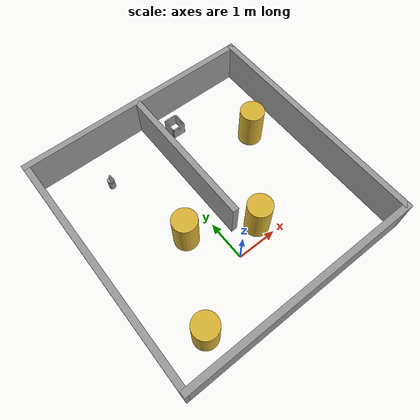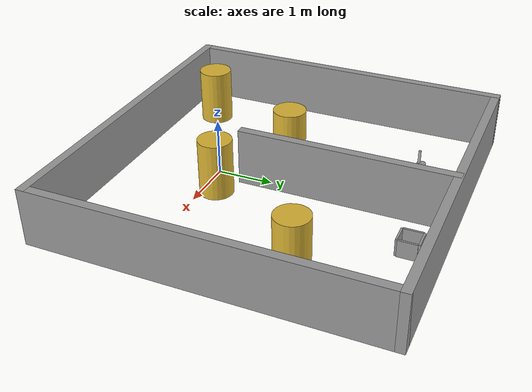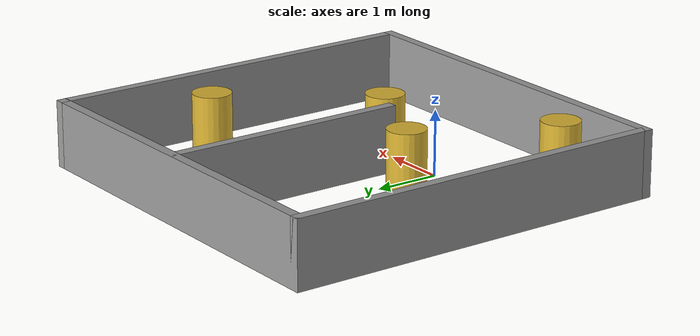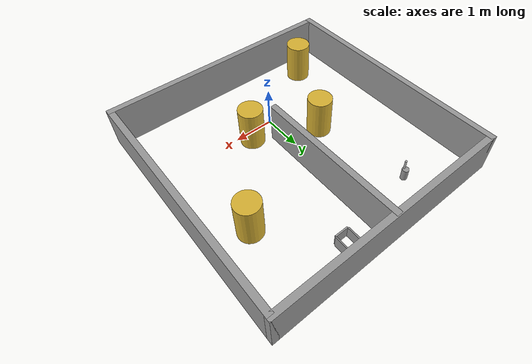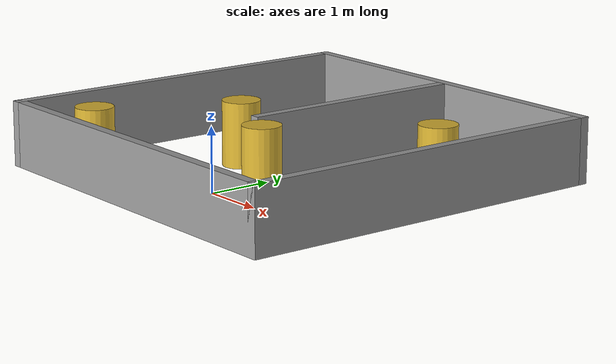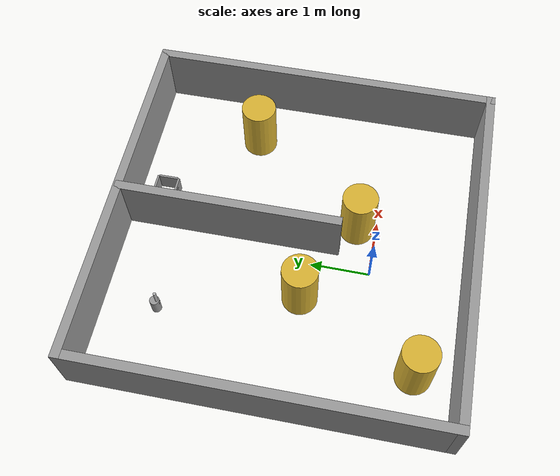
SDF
<sdf version="1.6">
 <world name="default">
  <light name="sun" type="directional">
   <pose>0 0 10 0 -0 0</pose>
   <diffuse>0.8 0.8 0.8 1</diffuse>
   <specular>0.2 0.2 0.2 1</specular>
   <attenuation>
    <range>1000</range>
    <constant>0.9</constant>
    <linear>0.01</linear>
    <quadratic>0.001</quadratic>
   </attenuation>
   <direction>-0.5 0.5 -1</direction>
  </light>
  <gravity>0 0 -9.8</gravity>
  <magnetic_field>6e-06 2.3e-05 -4.2e-05</magnetic_field>
  <atmosphere type="adiabatic"/>
  <physics name="default_physics" default="0" type="ode">
   <max_step_size>0.01</max_step_size>
   <real_time_factor>1</real_time_factor>
   <real_time_update_rate>100</real_time_update_rate>
   <ode>
    <solver>
     <type>quick</type>
     <iters>100</iters>
     <precon_iters>0</precon_iters>
     <sor>1</sor>
     <use_dynamic_moi_rescaling>0</use_dynamic_moi_rescaling>
    </solver>
    <constraints>
     <cfm>0</cfm>
     <erp>0.5</erp>
     <contact_max_correcting_vel>1000</contact_max_correcting_vel>
     <contact_surface_layer>0</contact_surface_layer>
    </constraints>
   </ode>
  </physics>
  <scene><ambient>0.4 0.4 0.4 1</ambient><background>0.7 0.7 0.7 1</background><shadows>0</shadows></scene>
  <spherical_coordinates>
   <surface_model>EARTH_WGS84</surface_model>
   <latitude_deg>0</latitude_deg>
   <longitude_deg>0</longitude_deg>
   <elevation>0</elevation>
   <heading_deg>0</heading_deg>
  </spherical_coordinates>
  <light name="user_point_light_0" type="point">
   <pose>3.54976 1.43038 1 0 -0 0</pose>
   <diffuse>0.5 0.5 0.5 1</diffuse>
   <specular>0.1 0.1 0.1 1</specular>
   <attenuation>
    <range>20</range>
    <constant>0.5</constant>
    <linear>0.01</linear>
    <quadratic>0.001</quadratic>
   </attenuation>
   <cast_shadows>0</cast_shadows>
   <direction>0 0 -1</direction>
  </light>
  <light name="user_point_light_0_clone" type="point">
   <pose>-8.02842 6.22549 7.18798 0 -0 0</pose>
   <diffuse>0.5 0.5 0.5 1</diffuse>
   <specular>0.1 0.1 0.1 1</specular>
   <direction>0 0 -1</direction>
   <attenuation>
    <range>20</range>
    <constant>0.5</constant>
    <linear>0.01</linear>
    <quadratic>0.001</quadratic>
   </attenuation>
   <cast_shadows>0</cast_shadows>
  </light>
  <audio><device>default</device></audio>
  <model name="turtlebot3_rooms">
   <link name="link_0">
    <pose>0.683315 4.23233 0 0 -0 0</pose>
    <inertial>
     <mass>0.00350583</mass>
     <inertia>
      <ixx>2.82745e-05</ixx>
      <ixy>0</ixy>
      <ixz>0</ixz>
      <iyy>5.98732e-05</iyy>
      <iyz>0</iyz>
      <izz>3.22857e-05</izz>
     </inertia>
    </inertial>
    <visual name="visual">
     <geometry><box><size>0.330665 0.034321 0.309211</size></box></geometry>
     <material>
      <lighting>1</lighting>
      <script><uri>file://media/materials/scripts/gazebo.material</uri><name>Gazebo/Grey</name></script>
      <ambient>0.3 0.3 0.3 1</ambient>
      <diffuse>0.7 0.7 0.7 1</diffuse>
      <specular>0.01 0.01 0.01 1</specular>
      <emissive>0 0 0 1</emissive>
     </material>
    </visual>
    <collision name="collision">
     <geometry><box><size>0.330665 0.034321 0.309211</size></box></geometry>
     <surface>
      <friction>
       <ode><mu>1</mu><mu2>1</mu2><fdir1>0 0 0</fdir1><slip1>0</slip1><slip2>0</slip2></ode>
       <torsional>
        <coefficient>1</coefficient>
        <patch_radius>0</patch_radius>
        <surface_radius>0</surface_radius>
        <use_patch_radius>1</use_patch_radius>
        <ode><slip>0</slip></ode>
       </torsional>
      </friction>
      <bounce><restitution_coefficient>0</restitution_coefficient><threshold>1e+06</threshold></bounce>
      <contact>
       <collide_without_contact>0</collide_without_contact>
       <collide_without_contact_bitmask>1</collide_without_contact_bitmask>
       <collide_bitmask>1</collide_bitmask>
       <ode>
        <soft_cfm>0</soft_cfm>
        <soft_erp>0.2</soft_erp>
        <kp>1e+13</kp>
        <kd>1</kd>
        <max_vel>0.01</max_vel>
        <min_depth>0</min_depth>
       </ode>
       <bullet>
        <split_impulse>1</split_impulse>
        <split_impulse_penetration_threshold>-0.01</split_impulse_penetration_threshold>
        <soft_cfm>0</soft_cfm>
        <soft_erp>0.2</soft_erp>
        <kp>1e+13</kp>
        <kd>1</kd>
       </bullet>
      </contact>
     </surface>
    </collision>
   </link>
   <link name="link_0_clone">
    <pose>0.682862 4.5976 0 0 -0 0</pose>
    <inertial>
     <mass>0.00350583</mass>
     <inertia>
      <ixx>2.82745e-05</ixx>
      <ixy>0</ixy>
      <ixz>0</ixz>
      <iyy>5.98732e-05</iyy>
      <iyz>0</iyz>
      <izz>3.22857e-05</izz>
     </inertia>
    </inertial>
    <visual name="visual">
     <geometry><box><size>0.330665 0.034321 0.309211</size></box></geometry>
     <material>
      <lighting>1</lighting>
      <script><uri>file://media/materials/scripts/gazebo.material</uri><name>Gazebo/Grey</name></script>
      <ambient>0.3 0.3 0.3 1</ambient>
      <diffuse>0.7 0.7 0.7 1</diffuse>
      <specular>0.01 0.01 0.01 1</specular>
      <emissive>0 0 0 1</emissive>
      <shader type="pixel"/>
     </material>
    </visual>
    <collision name="collision">
     <geometry><box><size>0.330665 0.034321 0.309211</size></box></geometry>
     <surface>
      <friction>
       <ode><mu>1</mu><mu2>1</mu2><fdir1>0 0 0</fdir1><slip1>0</slip1><slip2>0</slip2></ode>
       <torsional>
        <coefficient>1</coefficient>
        <patch_radius>0</patch_radius>
        <surface_radius>0</surface_radius>
        <use_patch_radius>1</use_patch_radius>
        <ode><slip>0</slip></ode>
       </torsional>
      </friction>
      <bounce><restitution_coefficient>0</restitution_coefficient><threshold>1e+06</threshold></bounce>
      <contact>
       <collide_without_contact>0</collide_without_contact>
       <collide_without_contact_bitmask>1</collide_without_contact_bitmask>
       <collide_bitmask>1</collide_bitmask>
       <ode>
        <soft_cfm>0</soft_cfm>
        <soft_erp>0.2</soft_erp>
        <kp>1e+13</kp>
        <kd>1</kd>
        <max_vel>0.01</max_vel>
        <min_depth>0</min_depth>
       </ode>
       <bullet>
        <split_impulse>1</split_impulse>
        <split_impulse_penetration_threshold>-0.01</split_impulse_penetration_threshold>
        <soft_cfm>0</soft_cfm>
        <soft_erp>0.2</soft_erp>
        <kp>1e+13</kp>
        <kd>1</kd>
       </bullet>
      </contact>
     </surface>
    </collision>
   </link>
   <link name="link_0_clone_0">
    <pose>0.84811 4.41524 0 0 -0 1.5708</pose>
    <inertial>
     <mass>0.00350583</mass>
     <inertia>
      <ixx>2.82745e-05</ixx>
      <ixy>0</ixy>
      <ixz>0</ixz>
      <iyy>5.98732e-05</iyy>
      <iyz>0</iyz>
      <izz>3.22857e-05</izz>
     </inertia>
    </inertial>
    <visual name="visual">
     <geometry><box><size>0.330665 0.034321 0.309211</size></box></geometry>
     <material>
      <lighting>1</lighting>
      <script><uri>file://media/materials/scripts/gazebo.material</uri><name>Gazebo/Grey</name></script>
      <ambient>0.3 0.3 0.3 1</ambient>
      <diffuse>0.7 0.7 0.7 1</diffuse>
      <specular>0.01 0.01 0.01 1</specular>
      <emissive>0 0 0 1</emissive>
      <shader type="pixel"/>
     </material>
    </visual>
    <collision name="collision">
     <geometry><box><size>0.330665 0.034321 0.309211</size></box></geometry>
     <surface>
      <friction>
       <ode><mu>1</mu><mu2>1</mu2><fdir1>0 0 0</fdir1><slip1>0</slip1><slip2>0</slip2></ode>
       <torsional>
        <coefficient>1</coefficient>
        <patch_radius>0</patch_radius>
        <surface_radius>0</surface_radius>
        <use_patch_radius>1</use_patch_radius>
        <ode><slip>0</slip></ode>
       </torsional>
      </friction>
      <bounce><restitution_coefficient>0</restitution_coefficient><threshold>1e+06</threshold></bounce>
      <contact>
       <collide_without_contact>0</collide_without_contact>
       <collide_without_contact_bitmask>1</collide_without_contact_bitmask>
       <collide_bitmask>1</collide_bitmask>
       <ode>
        <soft_cfm>0</soft_cfm>
        <soft_erp>0.2</soft_erp>
        <kp>1e+13</kp>
        <kd>1</kd>
        <max_vel>0.01</max_vel>
        <min_depth>0</min_depth>
       </ode>
       <bullet>
        <split_impulse>1</split_impulse>
        <split_impulse_penetration_threshold>-0.01</split_impulse_penetration_threshold>
        <soft_cfm>0</soft_cfm>
        <soft_erp>0.2</soft_erp>
        <kp>1e+13</kp>
        <kd>1</kd>
       </bullet>
      </contact>
     </surface>
    </collision>
   </link>
   <link name="link_0_clone_1">
    <pose>0.513944 4.41515 0 0 0 -1.5708</pose>
    <inertial>
     <mass>0.00350583</mass>
     <inertia>
      <ixx>2.82745e-05</ixx>
      <ixy>0</ixy>
      <ixz>0</ixz>
      <iyy>5.98732e-05</iyy>
      <iyz>0</iyz>
      <izz>3.22857e-05</izz>
     </inertia>
    </inertial>
    <visual name="visual">
     <geometry><box><size>0.330665 0.034321 0.309211</size></box></geometry>
     <material>
      <lighting>1</lighting>
      <script><uri>file://media/materials/scripts/gazebo.material</uri><name>Gazebo/Grey</name></script>
      <ambient>0.3 0.3 0.3 1</ambient>
      <diffuse>0.7 0.7 0.7 1</diffuse>
      <specular>0.01 0.01 0.01 1</specular>
      <emissive>0 0 0 1</emissive>
      <shader type="pixel"/>
     </material>
    </visual>
    <collision name="collision">
     <geometry><box><size>0.330665 0.034321 0.309211</size></box></geometry>
     <surface>
      <friction>
       <ode><mu>1</mu><mu2>1</mu2><fdir1>0 0 0</fdir1><slip1>0</slip1><slip2>0</slip2></ode>
       <torsional>
        <coefficient>1</coefficient>
        <patch_radius>0</patch_radius>
        <surface_radius>0</surface_radius>
        <use_patch_radius>1</use_patch_radius>
        <ode><slip>0</slip></ode>
       </torsional>
      </friction>
      <bounce><restitution_coefficient>0</restitution_coefficient><threshold>1e+06</threshold></bounce>
      <contact>
       <collide_without_contact>0</collide_without_contact>
       <collide_without_contact_bitmask>1</collide_without_contact_bitmask>
       <collide_bitmask>1</collide_bitmask>
       <ode>
        <soft_cfm>0</soft_cfm>
        <soft_erp>0.2</soft_erp>
        <kp>1e+13</kp>
        <kd>1</kd>
        <max_vel>0.01</max_vel>
        <min_depth>0</min_depth>
       </ode>
       <bullet>
        <split_impulse>1</split_impulse>
        <split_impulse_penetration_threshold>-0.01</split_impulse_penetration_threshold>
        <soft_cfm>0</soft_cfm>
        <soft_erp>0.2</soft_erp>
        <kp>1e+13</kp>
        <kd>1</kd>
       </bullet>
      </contact>
     </surface>
    </collision>
   </link>
   <link name="link_5">
    <pose>-1.50431 3.99994 0 0 -0 0</pose>
    <inertial>
     <mass>0.00123934</mass>
     <inertia>
      <ixx>2.13894e-06</ixx>
      <ixy>0</ixy>
      <ixz>0</ixz>
      <iyy>2.13894e-06</iyy>
      <iyz>0</iyz>
      <izz>3.73085e-06</izz>
     </inertia>
    </inertial>
    <visual name="visual">
     <geometry><cylinder><radius>0.08</radius><length>0.3</length></cylinder></geometry>
     <material>
      <lighting>1</lighting>
      <script><uri>file://media/materials/scripts/gazebo.material</uri><name>Gazebo/Grey</name></script>
      <ambient>0.3 0.3 0.3 1</ambient>
      <diffuse>0.7 0.7 0.7 1</diffuse>
      <specular>0.01 0.01 0.01 1</specular>
      <emissive>0 0 0 1</emissive>
     </material>
    </visual>
    <collision name="collision">
     <geometry><cylinder><radius>0.08</radius><length>0.3</length></cylinder></geometry>
     <surface>
      <friction>
       <ode><mu>1</mu><mu2>1</mu2><fdir1>0 0 0</fdir1><slip1>0</slip1><slip2>0</slip2></ode>
       <torsional>
        <coefficient>1</coefficient>
        <patch_radius>0</patch_radius>
        <surface_radius>0</surface_radius>
        <use_patch_radius>1</use_patch_radius>
        <ode><slip>0</slip></ode>
       </torsional>
      </friction>
      <bounce><restitution_coefficient>0</restitution_coefficient><threshold>1e+06</threshold></bounce>
      <contact>
       <collide_without_contact>0</collide_without_contact>
       <collide_without_contact_bitmask>1</collide_without_contact_bitmask>
       <collide_bitmask>1</collide_bitmask>
       <ode>
        <soft_cfm>0</soft_cfm>
        <soft_erp>0.2</soft_erp>
        <kp>1e+13</kp>
        <kd>1</kd>
        <max_vel>0.01</max_vel>
        <min_depth>0</min_depth>
       </ode>
       <bullet>
        <split_impulse>1</split_impulse>
        <split_impulse_penetration_threshold>-0.01</split_impulse_penetration_threshold>
        <soft_cfm>0</soft_cfm>
        <soft_erp>0.2</soft_erp>
        <kp>1e+13</kp>
        <kd>1</kd>
       </bullet>
      </contact>
     </surface>
    </collision>
   </link>
   <link name="link_1">
    <pose>-0.960899 1.71925 0.5 0 -0 0</pose>
    <inertial>
     <mass>0.341779</mass>
     <inertia>
      <ixx>0.0357823</ixx>
      <ixy>0</ixy>
      <ixz>0</ixz>
      <iyy>0.0357823</iyy>
      <iyz>0</iyz>
      <izz>0.0146016</izz>
     </inertia>
    </inertial>
    <visual name="visual">
     <geometry><cylinder><radius>0.292309</radius><length>1</length></cylinder></geometry>
     <material>
      <lighting>1</lighting>
      <script><uri>file://media/materials/scripts/gazebo.material</uri><name>Gazebo/Gold</name></script>
      <ambient>0.3 0.3 0.3 1</ambient>
      <diffuse>0.7 0.7 0.7 1</diffuse>
      <specular>0.01 0.01 0.01 1</specular>
      <emissive>0 0 0 1</emissive>
     </material>
    </visual>
    <collision name="collision">
     <geometry><cylinder><radius>0.292309</radius><length>1</length></cylinder></geometry>
     <surface>
      <friction>
       <ode><mu>1</mu><mu2>1</mu2><fdir1>0 0 0</fdir1><slip1>0</slip1><slip2>0</slip2></ode>
       <torsional>
        <coefficient>1</coefficient>
        <patch_radius>0</patch_radius>
        <surface_radius>0</surface_radius>
        <use_patch_radius>1</use_patch_radius>
        <ode><slip>0</slip></ode>
       </torsional>
      </friction>
      <bounce><restitution_coefficient>0</restitution_coefficient><threshold>1e+06</threshold></bounce>
      <contact>
       <collide_without_contact>0</collide_without_contact>
       <collide_without_contact_bitmask>1</collide_without_contact_bitmask>
       <collide_bitmask>1</collide_bitmask>
       <ode>
        <soft_cfm>0</soft_cfm>
        <soft_erp>0.2</soft_erp>
        <kp>1e+13</kp>
        <kd>1</kd>
        <max_vel>0.01</max_vel>
        <min_depth>0</min_depth>
       </ode>
       <bullet>
        <split_impulse>1</split_impulse>
        <split_impulse_penetration_threshold>-0.01</split_impulse_penetration_threshold>
        <soft_cfm>0</soft_cfm>
        <soft_erp>0.2</soft_erp>
        <kp>1e+13</kp>
        <kd>1</kd>
       </bullet>
      </contact>
     </surface>
    </collision>
   </link>
   <link name="link_1_clone">
    <pose>-1.9402 -0.24147 0.5 0 -0 0</pose>
    <inertial>
     <mass>0.341779</mass>
     <inertia>
      <ixx>0.0357823</ixx>
      <ixy>0</ixy>
      <ixz>0</ixz>
      <iyy>0.0357823</iyy>
      <iyz>0</iyz>
      <izz>0.0146016</izz>
     </inertia>
    </inertial>
    <visual name="visual">
     <geometry><cylinder><radius>0.292309</radius><length>1</length></cylinder></geometry>
     <material>
      <lighting>1</lighting>
      <script><uri>file://media/materials/scripts/gazebo.material</uri><name>Gazebo/Gold</name></script>
      <ambient>0.3 0.3 0.3 1</ambient>
      <diffuse>0.7 0.7 0.7 1</diffuse>
      <specular>0.01 0.01 0.01 1</specular>
      <emissive>0 0 0 1</emissive>
      <shader type="pixel"/>
     </material>
    </visual>
    <collision name="collision">
     <geometry><cylinder><radius>0.292309</radius><length>1</length></cylinder></geometry>
     <surface>
      <friction>
       <ode><mu>1</mu><mu2>1</mu2><fdir1>0 0 0</fdir1><slip1>0</slip1><slip2>0</slip2></ode>
       <torsional>
        <coefficient>1</coefficient>
        <patch_radius>0</patch_radius>
        <surface_radius>0</surface_radius>
        <use_patch_radius>1</use_patch_radius>
        <ode><slip>0</slip></ode>
       </torsional>
      </friction>
      <bounce><restitution_coefficient>0</restitution_coefficient><threshold>1e+06</threshold></bounce>
      <contact>
       <collide_without_contact>0</collide_without_contact>
       <collide_without_contact_bitmask>1</collide_without_contact_bitmask>
       <collide_bitmask>1</collide_bitmask>
       <ode>
        <soft_cfm>0</soft_cfm>
        <soft_erp>0.2</soft_erp>
        <kp>1e+13</kp>
        <kd>1</kd>
        <max_vel>0.01</max_vel>
        <min_depth>0</min_depth>
       </ode>
       <bullet>
        <split_impulse>1</split_impulse>
        <split_impulse_penetration_threshold>-0.01</split_impulse_penetration_threshold>
        <soft_cfm>0</soft_cfm>
        <soft_erp>0.2</soft_erp>
        <kp>1e+13</kp>
        <kd>1</kd>
       </bullet>
      </contact>
     </surface>
    </collision>
   </link>
   <link name="link_1_clone_0">
    <pose>0.49715 0.99994 0.5 0 -0 0</pose>
    <inertial>
     <mass>0.341779</mass>
     <inertia>
      <ixx>0.0357823</ixx>
      <ixy>0</ixy>
      <ixz>0</ixz>
      <iyy>0.0357823</iyy>
      <iyz>0</iyz>
      <izz>0.0146016</izz>
     </inertia>
    </inertial>
    <visual name="visual">
     <geometry><cylinder><radius>0.292309</radius><length>1</length></cylinder></geometry>
     <material>
      <lighting>1</lighting>
      <script><uri>file://media/materials/scripts/gazebo.material</uri><name>Gazebo/Gold</name></script>
      <ambient>0.3 0.3 0.3 1</ambient>
      <diffuse>0.7 0.7 0.7 1</diffuse>
      <specular>0.01 0.01 0.01 1</specular>
      <emissive>0 0 0 1</emissive>
      <shader type="pixel"/>
     </material>
    </visual>
    <collision name="collision">
     <geometry><cylinder><radius>0.292309</radius><length>1</length></cylinder></geometry>
     <surface>
      <friction>
       <ode><mu>1</mu><mu2>1</mu2><fdir1>0 0 0</fdir1><slip1>0</slip1><slip2>0</slip2></ode>
       <torsional>
        <coefficient>1</coefficient>
        <patch_radius>0</patch_radius>
        <surface_radius>0</surface_radius>
        <use_patch_radius>1</use_patch_radius>
        <ode><slip>0</slip></ode>
       </torsional>
      </friction>
      <bounce><restitution_coefficient>0</restitution_coefficient><threshold>1e+06</threshold></bounce>
      <contact>
       <collide_without_contact>0</collide_without_contact>
       <collide_without_contact_bitmask>1</collide_without_contact_bitmask>
       <collide_bitmask>1</collide_bitmask>
       <ode>
        <soft_cfm>0</soft_cfm>
        <soft_erp>0.2</soft_erp>
        <kp>1e+13</kp>
        <kd>1</kd>
        <max_vel>0.01</max_vel>
        <min_depth>0</min_depth>
       </ode>
       <bullet>
        <split_impulse>1</split_impulse>
        <split_impulse_penetration_threshold>-0.01</split_impulse_penetration_threshold>
        <soft_cfm>0</soft_cfm>
        <soft_erp>0.2</soft_erp>
        <kp>1e+13</kp>
        <kd>1</kd>
       </bullet>
      </contact>
     </surface>
    </collision>
   </link>
   <link name="link_1_clone_1">
    <pose>2 2.99994 0.5 0 -0 0</pose>
    <inertial>
     <mass>0.341779</mass>
     <inertia>
      <ixx>0.0357823</ixx>
      <ixy>0</ixy>
      <ixz>0</ixz>
      <iyy>0.0357823</iyy>
      <iyz>0</iyz>
      <izz>0.0146016</izz>
     </inertia>
    </inertial>
    <visual name="visual">
     <geometry><cylinder><radius>0.292309</radius><length>1</length></cylinder></geometry>
     <material>
      <lighting>1</lighting>
      <script><uri>file://media/materials/scripts/gazebo.material</uri><name>Gazebo/Gold</name></script>
      <ambient>0.3 0.3 0.3 1</ambient>
      <diffuse>0.7 0.7 0.7 1</diffuse>
      <specular>0.01 0.01 0.01 1</specular>
      <emissive>0 0 0 1</emissive>
      <shader type="pixel"/>
     </material>
    </visual>
    <collision name="collision">
     <geometry><cylinder><radius>0.292309</radius><length>1</length></cylinder></geometry>
     <surface>
      <friction>
       <ode><mu>1</mu><mu2>1</mu2><fdir1>0 0 0</fdir1><slip1>0</slip1><slip2>0</slip2></ode>
       <torsional>
        <coefficient>1</coefficient>
        <patch_radius>0</patch_radius>
        <surface_radius>0</surface_radius>
        <use_patch_radius>1</use_patch_radius>
        <ode><slip>0</slip></ode>
       </torsional>
      </friction>
      <bounce><restitution_coefficient>0</restitution_coefficient><threshold>1e+06</threshold></bounce>
      <contact>
       <collide_without_contact>0</collide_without_contact>
       <collide_without_contact_bitmask>1</collide_without_contact_bitmask>
       <collide_bitmask>1</collide_bitmask>
       <ode>
        <soft_cfm>0</soft_cfm>
        <soft_erp>0.2</soft_erp>
        <kp>1e+13</kp>
        <kd>1</kd>
        <max_vel>0.01</max_vel>
        <min_depth>0</min_depth>
       </ode>
       <bullet>
        <split_impulse>1</split_impulse>
        <split_impulse_penetration_threshold>-0.01</split_impulse_penetration_threshold>
        <soft_cfm>0</soft_cfm>
        <soft_erp>0.2</soft_erp>
        <kp>1e+13</kp>
        <kd>1</kd>
       </bullet>
      </contact>
     </surface>
    </collision>
   </link>
   <model name="ar_marker">
    <static>1</static>
    <link name="link">
     <visual name="visual">
      <geometry><box><size>0.05 0.001 0.05</size></box></geometry>
      <material>
       <script>
        <uri>model://turtlebot3_rooms/ar_marker/materials/scripts</uri>
        <uri>model://turtlebot3_rooms/ar_marker/materials/textures</uri>
        <name>ar_marker</name>
       </script>
      </material>
     </visual>
    </link>
    <pose>-1.5 3.92 0.096 0 -0 0</pose>
   </model>
   <model name="ar_marker_clone">
    <static>1</static>
    <link name="link">
     <visual name="visual">
      <geometry><box><size>0.05 0.001 0.05</size></box></geometry>
      <material>
       <script>
        <uri>model://turtlebot3_rooms/ar_marker/materials/scripts</uri>
        <uri>model://turtlebot3_rooms/ar_marker/materials/textures</uri>
        <name>ar_marker</name>
       </script>
      </material>
     </visual>
    </link>
    <pose>0.68 4.21 0.096 0 -0 0</pose>
   </model>
   <model name="rooms">
    <pose>0 1.99994 0 0 -0 0</pose>
    <link name="Wall_14">
     <collision name="Wall_14_Collision">
      <geometry><box><size>6 0.15 1</size></box></geometry>
      <pose>0 0 0.5 0 -0 0</pose>
     </collision>
     <visual name="Wall_14_Visual">
      <pose>0 0 0.5 0 -0 0</pose>
      <geometry><box><size>6 0.15 1</size></box></geometry>
      <material>
       <script><uri>file://media/materials/scripts/gazebo.material</uri><name>Gazebo/Grey</name></script>
       <ambient>1 1 1 1</ambient>
      </material>
     </visual>
     <pose>0 -2.925 0 0 -0 0</pose>
    </link>
    <link name="Wall_16">
     <collision name="Wall_16_Collision">
      <geometry><box><size>6 0.15 1</size></box></geometry>
      <pose>0 0 0.5 0 -0 0</pose>
     </collision>
     <visual name="Wall_16_Visual">
      <pose>0 0 0.5 0 -0 0</pose>
      <geometry><box><size>6 0.15 1</size></box></geometry>
      <material>
       <script><uri>file://media/materials/scripts/gazebo.material</uri><name>Gazebo/Grey</name></script>
       <ambient>1 1 1 1</ambient>
      </material>
     </visual>
     <pose>-2.925 0 0 0 -0 1.5708</pose>
    </link>
    <link name="Wall_18">
     <collision name="Wall_18_Collision">
      <geometry><box><size>6 0.15 1</size></box></geometry>
      <pose>0 0 0.5 0 -0 0</pose>
     </collision>
     <visual name="Wall_18_Visual">
      <pose>0 0 0.5 0 -0 0</pose>
      <geometry><box><size>6 0.15 1</size></box></geometry>
      <material>
       <script><uri>file://media/materials/scripts/gazebo.material</uri><name>Gazebo/Grey</name></script>
       <ambient>1 1 1 1</ambient>
      </material>
     </visual>
     <pose>2.925 0 0 0 -0 1.5708</pose>
    </link>
    <link name="Wall_20">
     <collision name="Wall_20_Collision">
      <geometry><box><size>6 0.15 1</size></box></geometry>
      <pose>0 0 0.5 0 -0 0</pose>
     </collision>
     <visual name="Wall_20_Visual">
      <pose>0 0 0.5 0 -0 0</pose>
      <geometry><box><size>6 0.15 1</size></box></geometry>
      <material>
       <script><uri>file://media/materials/scripts/gazebo.material</uri><name>Gazebo/Grey</name></script>
       <ambient>1 1 1 1</ambient>
      </material>
     </visual>
     <pose>0 2.925 0 0 -0 0</pose>
    </link>
    <link name="Wall_22">
     <collision name="Wall_22_Collision">
      <geometry><box><size>3.75 0.15 1</size></box></geometry>
      <pose>0 0 0.5 0 -0 0</pose>
     </collision>
     <visual name="Wall_22_Visual">
      <pose>0 0 0.5 0 -0 0</pose>
      <geometry><box><size>3.75 0.15 1</size></box></geometry>
      <material>
       <script><uri>file://media/materials/scripts/gazebo.material</uri><name>Gazebo/Grey</name></script>
       <ambient>1 1 1 1</ambient>
      </material>
     </visual>
     <pose>0.022 1.101 0 0 0 -1.5708</pose>
    </link>
    <link name="Wall_22">
     <collision name="Wall_22_Collision">
      <geometry><box><size>3.75 0.15 1</size></box></geometry>
      <pose>0 0 0.5 0 -0 0</pose>
     </collision>
     <visual name="Wall_22_Visual">
      <pose>0 0 0.5 0 -0 0</pose>
      <geometry><box><size>3.75 0.15 1</size></box></geometry>
      <material>
       <script><uri>file://media/materials/scripts/gazebo.material</uri><name>Gazebo/Grey</name></script>
       <ambient>1 1 1 1</ambient>
      </material>
     </visual>
     <pose>0.022 1.101 0 0 0 -1.5708</pose>
    </link>
    <static>1</static>
   </model>
   <model name="small_beer">
    <link name="link">
     <pose>0 0 0.08 0 -0 0</pose>
     <inertial>
      <mass>0.01</mass>
      <inertia>
       <ixx>4.7583e-05</ixx>
       <ixy>0</ixy>
       <ixz>0</ixz>
       <iyy>4.7583e-05</iyy>
       <iyz>0</iyz>
       <izz>3.125e-06</izz>
      </inertia>
     </inertial>
     <collision name="collision">
      <geometry><cylinder><radius>0.025</radius><length>0.235</length></cylinder></geometry>
      <surface>
       <friction><ode><mu>1e+06</mu><mu2>10000</mu2></ode></friction>
       <contact><ode><kp>1e+06</kp><kd>100</kd><max_vel>1</max_vel><min_depth>0.002</min_depth></ode></contact>
      </surface>
     </collision>
     <visual name="visual">
      <geometry><cylinder><radius>0.025</radius><length>0.235</length></cylinder></geometry>
      <material>
       <script>
        <uri>model://turtlebot3_rooms/small_beer/materials/scripts</uri>
        <uri>model://turtlebot3_rooms/small_beer/materials/textures</uri>
        <name>Beer/Diffuse</name>
       </script>
      </material>
     </visual>
    </link>
    <pose>-1.5 3.96 0.195 0 -0 0</pose>
   </model>
   <static>1</static>
   <allow_auto_disable>0</allow_auto_disable>
   <pose>0.258341 -0.66883 0.119088 0 -0 0</pose>
  </model>
 </world>
</sdf>
